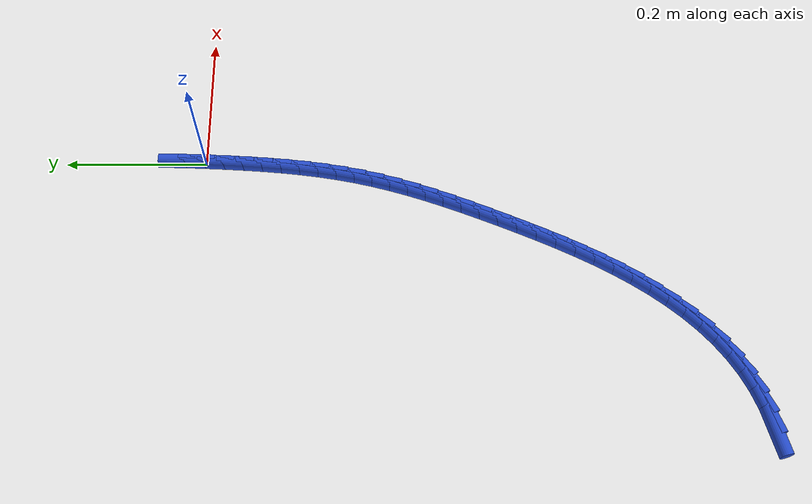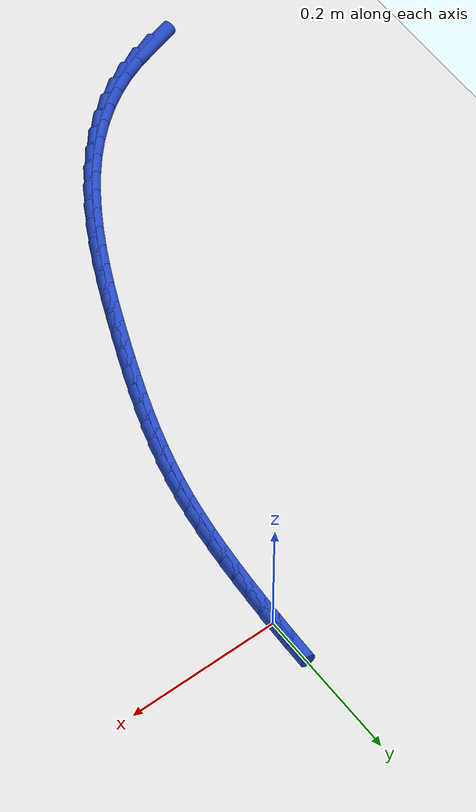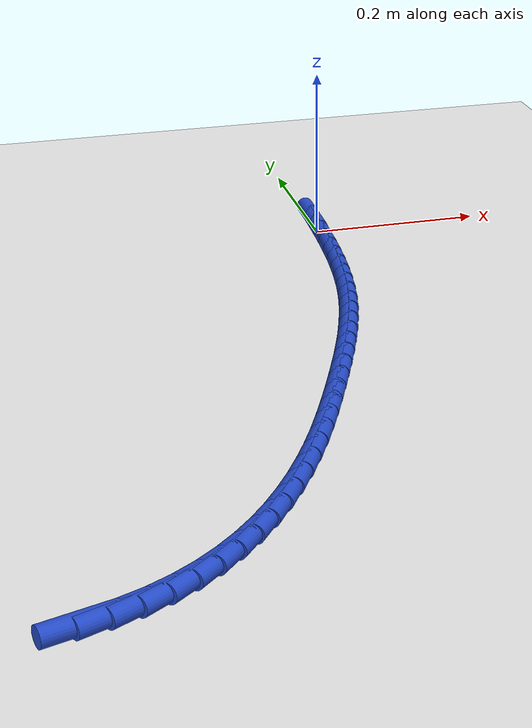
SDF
<sdf version="1.6">
 <world name="default">
  <model name="ground_plane">
   <static>1</static>
   <link name="link">
    <collision name="collision">
     <geometry><plane><normal>0 0 1</normal><size>100 100</size></plane></geometry>
     <surface><friction><ode><mu>100</mu><mu2>50</mu2></ode></friction></surface>
    </collision>
    <visual name="visual">
     <cast_shadows>0</cast_shadows>
     <geometry><plane><normal>0 0 1</normal><size>100 100</size></plane></geometry>
     <material>
      <script><uri>file://media/materials/scripts/gazebo.material</uri><name>Gazebo/WhiteGlow</name></script>
     </material>
    </visual>
   </link>
  </model>
  <model name="line">
   <link name="link_0">
    <pose>9.324138683375338e-18 3.469446951953614e-17 0.01 0 1.57 1.5323219815487206</pose>
    <collision name="collision">
     <geometry><cylinder><radius>0.01</radius><length>0.08</length></cylinder></geometry>
    </collision>
    <visual name="visual">
     <material>
      <script><name>Gazebo/Blue</name><uri>file://media/materials/scripts/gazebo.material</uri></script>
     </material>
     <geometry><cylinder><radius>0.01</radius><length>0.08</length></cylinder></geometry>
    </visual>
   </link>
   <link name="link_1">
    <pose>0.0010711083507516086 0.02782580912069063 0.01 0 1.57 1.5497142666336148</pose>
    <collision name="collision">
     <geometry><cylinder><radius>0.01</radius><length>0.08</length></cylinder></geometry>
    </collision>
    <visual name="visual">
     <material>
      <script><name>Gazebo/Blue</name><uri>file://media/materials/scripts/gazebo.material</uri></script>
     </material>
     <geometry><cylinder><radius>0.01</radius><length>0.08</length></cylinder></geometry>
    </visual>
   </link>
   <link name="link_257">
    <pose>-0.38862313093483997 -0.7604501483229795 0.01 0 1.57 0.2740676667263342</pose>
    <collision name="collision">
     <geometry><cylinder><radius>0.01</radius><length>0.08</length></cylinder></geometry>
    </collision>
    <visual name="visual">
     <material>
      <script><name>Gazebo/Blue</name><uri>file://media/materials/scripts/gazebo.material</uri></script>
     </material>
     <geometry><cylinder><radius>0.01</radius><length>0.08</length></cylinder></geometry>
    </visual>
   </link>
   <link name="link_258">
    <pose>-0.3613411857109271 -0.7527800387978364 0.01 0 1.57 0.37534917695563697</pose>
    <collision name="collision">
     <geometry><cylinder><radius>0.01</radius><length>0.08</length></cylinder></geometry>
    </collision>
    <visual name="visual">
     <material>
      <script><name>Gazebo/Blue</name><uri>file://media/materials/scripts/gazebo.material</uri></script>
     </material>
     <geometry><cylinder><radius>0.01</radius><length>0.08</length></cylinder></geometry>
    </visual>
   </link>
   <link name="link_259">
    <pose>-0.3356700491341737 -0.7426648431508732 0.01 0 1.57 0.47410739653550626</pose>
    <collision name="collision">
     <geometry><cylinder><radius>0.01</radius><length>0.08</length></cylinder></geometry>
    </collision>
    <visual name="visual">
     <material>
      <script><name>Gazebo/Blue</name><uri>file://media/materials/scripts/gazebo.material</uri></script>
     </material>
     <geometry><cylinder><radius>0.01</radius><length>0.08</length></cylinder></geometry>
    </visual>
   </link>
   <link name="link_260">
    <pose>-0.31153142175030357 -0.7302782524205874 0.01 0 1.57 0.5682575449017064</pose>
    <collision name="collision">
     <geometry><cylinder><radius>0.01</radius><length>0.08</length></cylinder></geometry>
    </collision>
    <visual name="visual">
     <material>
      <script><name>Gazebo/Blue</name><uri>file://media/materials/scripts/gazebo.material</uri></script>
     </material>
     <geometry><cylinder><radius>0.01</radius><length>0.08</length></cylinder></geometry>
    </visual>
   </link>
   <link name="link_261">
    <pose>-0.2888470041050409 -0.7157939576454757 0.01 0 1.57 0.6562010234934587</pose>
    <collision name="collision">
     <geometry><cylinder><radius>0.01</radius><length>0.08</length></cylinder></geometry>
    </collision>
    <visual name="visual">
     <material>
      <script><name>Gazebo/Blue</name><uri>file://media/materials/scripts/gazebo.material</uri></script>
     </material>
     <geometry><cylinder><radius>0.01</radius><length>0.08</length></cylinder></geometry>
    </visual>
   </link>
   <link name="link_262">
    <pose>-0.26753849674410973 -0.6993856498640355 0.01 0 1.57 0.7369088306324346</pose>
    <collision name="collision">
     <geometry><cylinder><radius>0.01</radius><length>0.08</length></cylinder></geometry>
    </collision>
    <visual name="visual">
     <material>
      <script><name>Gazebo/Blue</name><uri>file://media/materials/scripts/gazebo.material</uri></script>
     </material>
     <geometry><cylinder><radius>0.01</radius><length>0.08</length></cylinder></geometry>
    </visual>
   </link>
   <link name="link_263">
    <pose>-0.24752760021323397 -0.6812270201147635 0.01 0 1.57 0.8098872397840271</pose>
    <collision name="collision">
     <geometry><cylinder><radius>0.01</radius><length>0.08</length></cylinder></geometry>
    </collision>
    <visual name="visual">
     <material>
      <script><name>Gazebo/Blue</name><uri>file://media/materials/scripts/gazebo.material</uri></script>
     </material>
     <geometry><cylinder><radius>0.01</radius><length>0.08</length></cylinder></geometry>
    </visual>
   </link>
   <link name="link_264">
    <pose>-0.2287360150581379 -0.6614917594361571 0.01 0 1.57 0.8750703509463189</pose>
    <collision name="collision">
     <geometry><cylinder><radius>0.01</radius><length>0.08</length></cylinder></geometry>
    </collision>
    <visual name="visual">
     <material>
      <script><name>Gazebo/Blue</name><uri>file://media/materials/scripts/gazebo.material</uri></script>
     </material>
     <geometry><cylinder><radius>0.01</radius><length>0.08</length></cylinder></geometry>
    </visual>
   </link>
   <link name="link_265">
    <pose>-0.2110854418245459 -0.6403535588667135 0.01 0 1.57 0.9326883063531834</pose>
    <collision name="collision">
     <geometry><cylinder><radius>0.01</radius><length>0.08</length></cylinder></geometry>
    </collision>
    <visual name="visual">
     <material>
      <script><name>Gazebo/Blue</name><uri>file://media/materials/scripts/gazebo.material</uri></script>
     </material>
     <geometry><cylinder><radius>0.01</radius><length>0.08</length></cylinder></geometry>
    </visual>
   </link>
   <link name="link_266">
    <pose>-0.19449758105818094 -0.6179861094449288 0.01 0 1.57 0.9831452471411462</pose>
    <collision name="collision">
     <geometry><cylinder><radius>0.01</radius><length>0.08</length></cylinder></geometry>
    </collision>
    <visual name="visual">
     <material>
      <script><name>Gazebo/Blue</name><uri>file://media/materials/scripts/gazebo.material</uri></script>
     </material>
     <geometry><cylinder><radius>0.01</radius><length>0.08</length></cylinder></geometry>
    </visual>
   </link>
   <link name="link_267">
    <pose>-0.17889413330476764 -0.5945631022093004 0.01 0 1.57 1.0269227799423568</pose>
    <collision name="collision">
     <geometry><cylinder><radius>0.01</radius><length>0.08</length></cylinder></geometry>
    </collision>
    <visual name="visual">
     <material>
      <script><name>Gazebo/Blue</name><uri>file://media/materials/scripts/gazebo.material</uri></script>
     </material>
     <geometry><cylinder><radius>0.01</radius><length>0.08</length></cylinder></geometry>
    </visual>
   </link>
   <link name="link_268">
    <pose>-0.16419679911003018 -0.5702582281983257 0.01 0 1.57 1.0645113922122997</pose>
    <collision name="collision">
     <geometry><cylinder><radius>0.01</radius><length>0.08</length></cylinder></geometry>
    </collision>
    <visual name="visual">
     <material>
      <script><name>Gazebo/Blue</name><uri>file://media/materials/scripts/gazebo.material</uri></script>
     </material>
     <geometry><cylinder><radius>0.01</radius><length>0.08</length></cylinder></geometry>
    </visual>
   </link>
   <link name="link_269">
    <pose>-0.15032727901969237 -0.5452451784505015 0.01 0 1.57 1.0963654305205217</pose>
    <collision name="collision">
     <geometry><cylinder><radius>0.01</radius><length>0.08</length></cylinder></geometry>
    </collision>
    <visual name="visual">
     <material>
      <script><name>Gazebo/Blue</name><uri>file://media/materials/scripts/gazebo.material</uri></script>
     </material>
     <geometry><cylinder><radius>0.01</radius><length>0.08</length></cylinder></geometry>
    </visual>
   </link>
   <link name="link_270">
    <pose>-0.13720727357947837 -0.5196976440043246 0.01 0 1.57 1.1228751204833616</pose>
    <collision name="collision">
     <geometry><cylinder><radius>0.01</radius><length>0.08</length></cylinder></geometry>
    </collision>
    <visual name="visual">
     <material>
      <script><name>Gazebo/Blue</name><uri>file://media/materials/scripts/gazebo.material</uri></script>
     </material>
     <geometry><cylinder><radius>0.01</radius><length>0.08</length></cylinder></geometry>
    </visual>
   </link>
   <link name="link_271">
    <pose>-0.12475848333511225 -0.49378931589829234 0.01 0 1.57 1.144349396328328</pose>
    <collision name="collision">
     <geometry><cylinder><radius>0.01</radius><length>0.08</length></cylinder></geometry>
    </collision>
    <visual name="visual">
     <material>
      <script><name>Gazebo/Blue</name><uri>file://media/materials/scripts/gazebo.material</uri></script>
     </material>
     <geometry><cylinder><radius>0.01</radius><length>0.08</length></cylinder></geometry>
    </visual>
   </link>
   <link name="link_272">
    <pose>-0.11290260883231798 -0.4676938851709017 0.01 0 1.57 1.161004437695975</pose>
    <collision name="collision">
     <geometry><cylinder><radius>0.01</radius><length>0.08</length></cylinder></geometry>
    </collision>
    <visual name="visual">
     <material>
      <script><name>Gazebo/Blue</name><uri>file://media/materials/scripts/gazebo.material</uri></script>
     </material>
     <geometry><cylinder><radius>0.01</radius><length>0.08</length></cylinder></geometry>
    </visual>
   </link>
   <link name="link_273">
    <pose>-0.10156135061681962 -0.44158504286064965 0.01 0 1.57 1.1729599454982569</pose>
    <collision name="collision">
     <geometry><cylinder><radius>0.01</radius><length>0.08</length></cylinder></geometry>
    </collision>
    <visual name="visual">
     <material>
      <script><name>Gazebo/Blue</name><uri>file://media/materials/scripts/gazebo.material</uri></script>
     </material>
     <geometry><cylinder><radius>0.01</radius><length>0.08</length></cylinder></geometry>
    </visual>
   </link>
   <link name="link_274">
    <pose>-0.0906565173363723 -0.4156363014402509 0.01 0 1.57 1.1823362231461079</pose>
    <collision name="collision">
     <geometry><cylinder><radius>0.01</radius><length>0.08</length></cylinder></geometry>
    </collision>
    <visual name="visual">
     <material>
      <script><name>Gazebo/Blue</name><uri>file://media/materials/scripts/gazebo.material</uri></script>
     </material>
     <geometry><cylinder><radius>0.01</radius><length>0.08</length></cylinder></geometry>
    </visual>
   </link>
   <link name="link_275">
    <pose>-0.08014777860405357 -0.3899586336426202 0.01 0 1.57 1.1943721469144768</pose>
    <collision name="collision">
     <geometry><cylinder><radius>0.01</radius><length>0.08</length></cylinder></geometry>
    </collision>
    <visual name="visual">
     <material>
      <script><name>Gazebo/Blue</name><uri>file://media/materials/scripts/gazebo.material</uri></script>
     </material>
     <geometry><cylinder><radius>0.01</radius><length>0.08</length></cylinder></geometry>
    </visual>
   </link>
   <link name="link_276">
    <pose>-0.07008816297109059 -0.3645087994475076 0.01 0 1.57 1.2099434435012577</pose>
    <collision name="collision">
     <geometry><cylinder><radius>0.01</radius><length>0.08</length></cylinder></geometry>
    </collision>
    <visual name="visual">
     <material>
      <script><name>Gazebo/Blue</name><uri>file://media/materials/scripts/gazebo.material</uri></script>
     </material>
     <geometry><cylinder><radius>0.01</radius><length>0.08</length></cylinder></geometry>
    </visual>
   </link>
   <link name="link_277">
    <pose>-0.06054483399334502 -0.33922021026168314 0.01 0 1.57 1.2291090945002348</pose>
    <collision name="collision">
     <geometry><cylinder><radius>0.01</radius><length>0.08</length></cylinder></geometry>
    </collision>
    <visual name="visual">
     <material>
      <script><name>Gazebo/Blue</name><uri>file://media/materials/scripts/gazebo.material</uri></script>
     </material>
     <geometry><cylinder><radius>0.01</radius><length>0.08</length></cylinder></geometry>
    </visual>
   </link>
   <link name="link_278">
    <pose>-0.051584955226678615 -0.3140262774919173 0.01 0 1.57 1.2518864623828625</pose>
    <collision name="collision">
     <geometry><cylinder><radius>0.01</radius><length>0.08</length></cylinder></geometry>
    </collision>
    <visual name="visual">
     <material>
      <script><name>Gazebo/Blue</name><uri>file://media/materials/scripts/gazebo.material</uri></script>
     </material>
     <geometry><cylinder><radius>0.01</radius><length>0.08</length></cylinder></geometry>
    </visual>
   </link>
   <link name="link_279">
    <pose>-0.04327569022695308 -0.28886041254497985 0.01 0 1.57 1.278241645190133</pose>
    <collision name="collision">
     <geometry><cylinder><radius>0.01</radius><length>0.08</length></cylinder></geometry>
    </collision>
    <visual name="visual">
     <material>
      <script><name>Gazebo/Blue</name><uri>file://media/materials/scripts/gazebo.material</uri></script>
     </material>
     <geometry><cylinder><radius>0.01</radius><length>0.08</length></cylinder></geometry>
    </visual>
   </link>
   <link name="link_280">
    <pose>-0.035684202550030374 -0.26365602682764216 0.01 0 1.57 1.308079688974222</pose>
    <collision name="collision">
     <geometry><cylinder><radius>0.01</radius><length>0.08</length></cylinder></geometry>
    </collision>
    <visual name="visual">
     <material>
      <script><name>Gazebo/Blue</name><uri>file://media/materials/scripts/gazebo.material</uri></script>
     </material>
     <geometry><cylinder><radius>0.01</radius><length>0.08</length></cylinder></geometry>
    </visual>
   </link>
   <link name="link_281">
    <pose>-0.028877655751771727 -0.23834653174667242 0.01 0 1.57 1.3412351585333255</pose>
    <collision name="collision">
     <geometry><cylinder><radius>0.01</radius><length>0.08</length></cylinder></geometry>
    </collision>
    <visual name="visual">
     <material>
      <script><name>Gazebo/Blue</name><uri>file://media/materials/scripts/gazebo.material</uri></script>
     </material>
     <geometry><cylinder><radius>0.01</radius><length>0.08</length></cylinder></geometry>
    </visual>
   </link>
   <link name="link_282">
    <pose>-0.02292319858397204 -0.2128653441519634 0.01 0 1.57 1.3761173133827282</pose>
    <collision name="collision">
     <geometry><cylinder><radius>0.01</radius><length>0.08</length></cylinder></geometry>
    </collision>
    <visual name="visual">
     <material>
      <script><name>Gazebo/Blue</name><uri>file://media/materials/scripts/gazebo.material</uri></script>
     </material>
     <geometry><cylinder><radius>0.01</radius><length>0.08</length></cylinder></geometry>
    </visual>
   </link>
   <link name="link_283">
    <pose>-0.017854366376645118 -0.18715823979057283 0.01 0 1.57 1.4082690586646</pose>
    <collision name="collision">
     <geometry><cylinder><radius>0.01</radius><length>0.08</length></cylinder></geometry>
    </collision>
    <visual name="visual">
     <material>
      <script><name>Gazebo/Blue</name><uri>file://media/materials/scripts/gazebo.material</uri></script>
     </material>
     <geometry><cylinder><radius>0.01</radius><length>0.08</length></cylinder></geometry>
    </visual>
   </link>
   <link name="link_284">
    <pose>-0.01359948681982997 -0.16120967688621893 0.01 0 1.57 1.4367427412969733</pose>
    <collision name="collision">
     <geometry><cylinder><radius>0.01</radius><length>0.08</length></cylinder></geometry>
    </collision>
    <visual name="visual">
     <material>
      <script><name>Gazebo/Blue</name><uri>file://media/materials/scripts/gazebo.material</uri></script>
     </material>
     <geometry><cylinder><radius>0.01</radius><length>0.08</length></cylinder></geometry>
    </visual>
   </link>
   <link name="link_285">
    <pose>-0.010066359643175057 -0.1350116613307255 0.01 0 1.57 1.4614805282321457</pose>
    <collision name="collision">
     <geometry><cylinder><radius>0.01</radius><length>0.08</length></cylinder></geometry>
    </collision>
    <visual name="visual">
     <material>
      <script><name>Gazebo/Blue</name><uri>file://media/materials/scripts/gazebo.material</uri></script>
     </material>
     <geometry><cylinder><radius>0.01</radius><length>0.08</length></cylinder></geometry>
    </visual>
   </link>
   <link name="link_286">
    <pose>-0.007162784576328835 -0.10855619901591639 0.01 0 1.57 1.4824734473519487</pose>
    <collision name="collision">
     <geometry><cylinder><radius>0.01</radius><length>0.08</length></cylinder></geometry>
    </collision>
    <visual name="visual">
     <material>
      <script><name>Gazebo/Blue</name><uri>file://media/materials/scripts/gazebo.material</uri></script>
     </material>
     <geometry><cylinder><radius>0.01</radius><length>0.08</length></cylinder></geometry>
    </visual>
   </link>
   <link name="link_287">
    <pose>-0.0047965613489397586 -0.08183529583361547 0.01 0 1.57 1.4997503786152058</pose>
    <collision name="collision">
     <geometry><cylinder><radius>0.01</radius><length>0.08</length></cylinder></geometry>
    </collision>
    <visual name="visual">
     <material>
      <script><name>Gazebo/Blue</name><uri>file://media/materials/scripts/gazebo.material</uri></script>
     </material>
     <geometry><cylinder><radius>0.01</radius><length>0.08</length></cylinder></geometry>
    </visual>
   </link>
   <link name="link_288">
    <pose>-0.0028754896906562875 -0.05484095767564648 0.01 0 1.57 1.513368204420068</pose>
    <collision name="collision">
     <geometry><cylinder><radius>0.01</radius><length>0.08</length></cylinder></geometry>
    </collision>
    <visual name="visual">
     <material>
      <script><name>Gazebo/Blue</name><uri>file://media/materials/scripts/gazebo.material</uri></script>
     </material>
     <geometry><cylinder><radius>0.01</radius><length>0.08</length></cylinder></geometry>
    </visual>
   </link>
   <link name="link_289">
    <pose>-0.0013073693311268751 -0.02756519043383329 0.01 0 1.57 1.5234035699105655</pose>
    <collision name="collision">
     <geometry><cylinder><radius>0.01</radius><length>0.08</length></cylinder></geometry>
    </collision>
    <visual name="visual">
     <material>
      <script><name>Gazebo/Blue</name><uri>file://media/materials/scripts/gazebo.material</uri></script>
     </material>
     <geometry><cylinder><radius>0.01</radius><length>0.08</length></cylinder></geometry>
    </visual>
   </link>
   <link name="link_290">
    <pose>2.211772431870429e-17 2.8449465006019636e-16 0.01 0 1.57 1.5299464157303855</pose>
    <collision name="collision">
     <geometry><cylinder><radius>0.01</radius><length>0.08</length></cylinder></geometry>
    </collision>
    <visual name="visual">
     <material>
      <script><name>Gazebo/Blue</name><uri>file://media/materials/scripts/gazebo.material</uri></script>
     </material>
     <geometry><cylinder><radius>0.01</radius><length>0.08</length></cylinder></geometry>
    </visual>
   </link>
  </model>
 </world>
</sdf>
